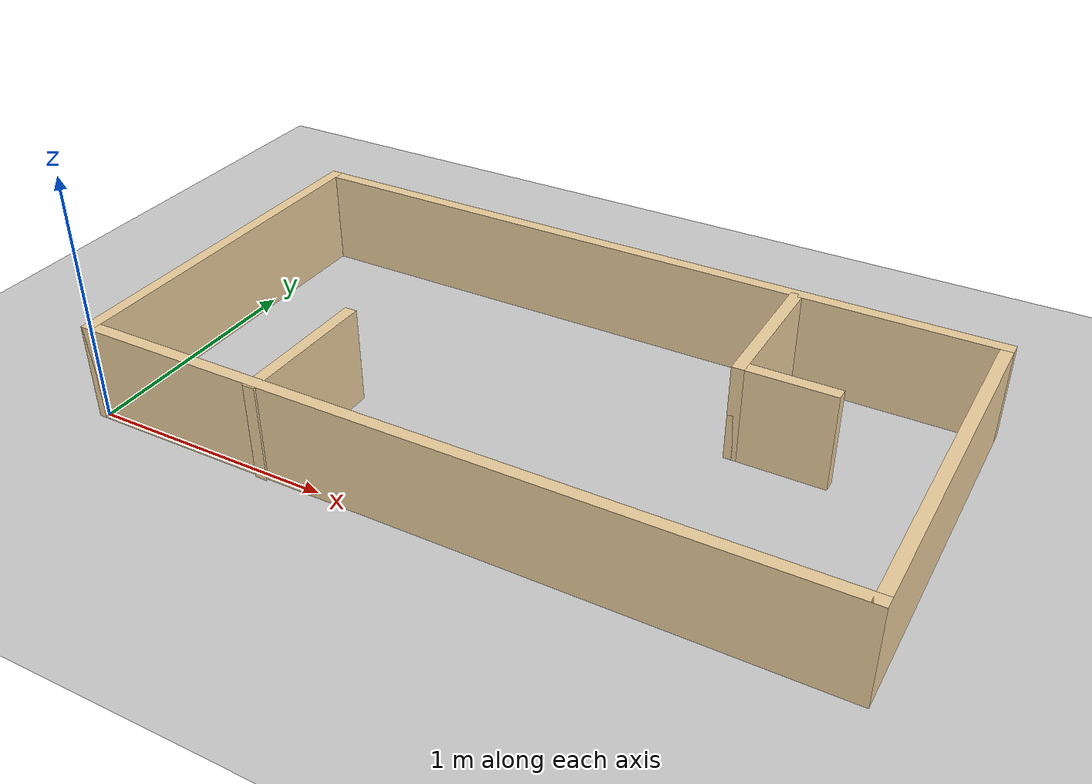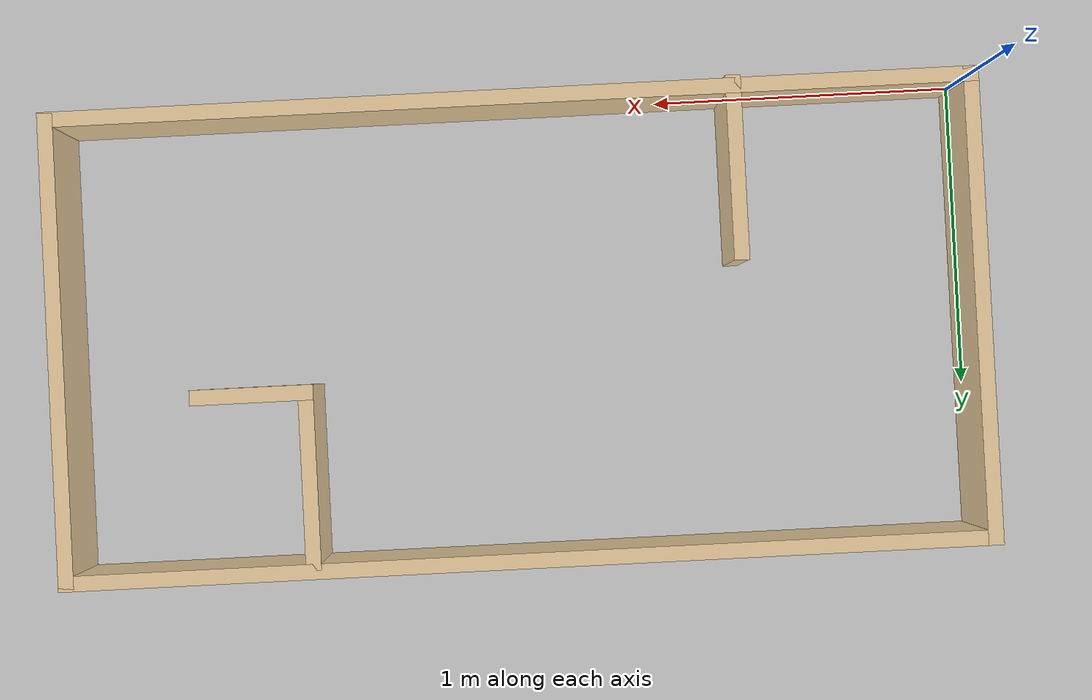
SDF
<sdf version="1.7">
 <world name="default">
  <light name="sun" type="directional">
   <pose>0 0 10 0 -0 0</pose>
   <diffuse>0.8 0.8 0.8 1</diffuse>
   <specular>0.2 0.2 0.2 1</specular>
   <attenuation>
    <range>1000</range>
    <constant>0.9</constant>
    <linear>0.01</linear>
    <quadratic>0.001</quadratic>
   </attenuation>
   <direction>-0.5 0.1 -0.9</direction>
   <spot><inner_angle>0</inner_angle><outer_angle>0</outer_angle><falloff>0</falloff></spot>
  </light>
  <model name="ground_plane">
   <static>1</static>
   <link name="link">
    <collision name="collision">
     <geometry><plane><normal>0 0 1</normal><size>100 100</size></plane></geometry>
     <surface>
      <contact><collide_bitmask>65535</collide_bitmask></contact>
      <friction><ode><mu>100</mu><mu2>50</mu2></ode></friction>
     </surface>
    </collision>
    <visual name="visual">
     <cast_shadows>0</cast_shadows>
     <geometry><plane><normal>0 0 1</normal><size>100 100</size></plane></geometry>
     <material>
      <script><uri>file://media/materials/scripts/gazebo.material</uri><name>Gazebo/Grey</name></script>
     </material>
    </visual>
   </link>
  </model>
  <gravity>0 0 -9.8</gravity>
  <magnetic_field>6e-06 2.3e-05 -4.2e-05</magnetic_field>
  <atmosphere type="adiabatic"/>
  <physics type="ode">
   <max_step_size>0.001</max_step_size>
   <real_time_factor>1</real_time_factor>
   <real_time_update_rate>1000</real_time_update_rate>
  </physics>
  <scene><ambient>0.4 0.4 0.4 1</ambient><background>0.7 0.7 0.7 1</background><shadows>1</shadows></scene>
  <audio><device>default</device></audio>
  <spherical_coordinates>
   <surface_model>EARTH_WGS84</surface_model>
   <latitude_deg>0</latitude_deg>
   <longitude_deg>0</longitude_deg>
   <elevation>0</elevation>
   <heading_deg>0</heading_deg>
  </spherical_coordinates>
  <model name="world">
   <pose>1.5 0.7455 0 0 -0 0</pose>
   <link name="Wall_10">
    <collision name="Wall_10_Collision">
     <geometry><box><size>3.05 0.05 0.4</size></box></geometry>
     <pose>0 0 0.2 0 -0 0</pose>
    </collision>
    <visual name="Wall_10_Visual">
     <pose>0 0 0.2 0 -0 0</pose>
     <geometry><box><size>3.05 0.05 0.4</size></box></geometry>
     <material>
      <script><uri>file://media/materials/scripts/gazebo.material</uri><name>Gazebo/Grey</name></script>
      <ambient>0.921569 0.807843 0.615686 1</ambient>
     </material>
     <meta><layer>0</layer></meta>
    </visual>
    <pose>0 -0.7455 0 0 -0 0</pose>
   </link>
   <link name="Wall_11">
    <collision name="Wall_11_Collision">
     <geometry><box><size>1.55 0.05 0.4</size></box></geometry>
     <pose>0 0 0.2 0 -0 0</pose>
    </collision>
    <visual name="Wall_11_Visual">
     <pose>0 0 0.2 0 -0 0</pose>
     <geometry><box><size>1.55 0.05 0.4</size></box></geometry>
     <material>
      <script><uri>file://media/materials/scripts/gazebo.material</uri><name>Gazebo/Grey</name></script>
      <ambient>0.921569 0.807843 0.615686 1</ambient>
     </material>
     <meta><layer>0</layer></meta>
    </visual>
    <pose>1.5 0.0045 0 0 -0 1.5708</pose>
   </link>
   <link name="Wall_12">
    <collision name="Wall_12_Collision">
     <geometry><box><size>3.05 0.05 0.4</size></box></geometry>
     <pose>0 0 0.2 0 -0 0</pose>
    </collision>
    <visual name="Wall_12_Visual">
     <pose>0 0 0.2 0 -0 0</pose>
     <geometry><box><size>3.05 0.05 0.4</size></box></geometry>
     <material>
      <script><uri>file://media/materials/scripts/gazebo.material</uri><name>Gazebo/Grey</name></script>
      <ambient>0.921569 0.807843 0.615686 1</ambient>
     </material>
     <meta><layer>0</layer></meta>
    </visual>
    <pose>0 0.7545 0 0 -0 3.14159</pose>
   </link>
   <link name="Wall_13">
    <collision name="Wall_13_Collision">
     <geometry><box><size>1.55 0.05 0.4</size></box></geometry>
     <pose>0 0 0.2 0 -0 0</pose>
    </collision>
    <visual name="Wall_13_Visual">
     <pose>0 0 0.2 0 -0 0</pose>
     <geometry><box><size>1.55 0.05 0.4</size></box></geometry>
     <material>
      <script><uri>file://media/materials/scripts/gazebo.material</uri><name>Gazebo/Grey</name></script>
      <ambient>0.921569 0.807843 0.615686 1</ambient>
     </material>
     <meta><layer>0</layer></meta>
    </visual>
    <pose>-1.5 0.0045 0 0 -0 -1.5708</pose>
   </link>
   <link name="Wall_16">
    <collision name="Wall_16_Collision">
     <geometry><box><size>0.6 0.05 0.4</size></box></geometry>
     <pose>0 0 0.2 0 -0 0</pose>
    </collision>
    <visual name="Wall_16_Visual">
     <pose>0 0 0.2 0 -0 0</pose>
     <geometry><box><size>0.6 0.05 0.4</size></box></geometry>
     <material>
      <script><uri>file://media/materials/scripts/gazebo.material</uri><name>Gazebo/Grey</name></script>
      <ambient>0.921569 0.807843 0.615686 1</ambient>
     </material>
     <meta><layer>0</layer></meta>
    </visual>
    <pose>0.7 0.4515 0 0 -0 -1.5708</pose>
   </link>
   <link name="Wall_17">
    <collision name="Wall_17_Collision">
     <geometry><box><size>0.4 0.05 0.4</size></box></geometry>
     <pose>0 0 0.2 0 -0 0</pose>
    </collision>
    <visual name="Wall_17_Visual">
     <pose>0 0 0.2 0 -0 0</pose>
     <geometry><box><size>0.4 0.05 0.4</size></box></geometry>
     <material>
      <script><uri>file://media/materials/scripts/gazebo.material</uri><name>Gazebo/Grey</name></script>
      <ambient>0.921569 0.807843 0.615686 1</ambient>
     </material>
     <meta><layer>0</layer></meta>
    </visual>
    <pose>0.875 0.1765 0 0 -0 0</pose>
   </link>
   <link name="Wall_19">
    <collision name="Wall_19_Collision">
     <geometry><box><size>0.6 0.05 0.4</size></box></geometry>
     <pose>0 0 0.2 0 -0 0</pose>
    </collision>
    <visual name="Wall_19_Visual">
     <pose>0 0 0.2 0 -0 0</pose>
     <geometry><box><size>0.6 0.05 0.4</size></box></geometry>
     <material>
      <script><uri>file://media/materials/scripts/gazebo.material</uri><name>Gazebo/Grey</name></script>
      <ambient>0.921569 0.807843 0.615686 1</ambient>
     </material>
     <meta><layer>0</layer></meta>
    </visual>
    <pose>-0.73 -0.4795 0 0 -0 1.5708</pose>
   </link>
   <static>1</static>
  </model>
 </world>
</sdf>
